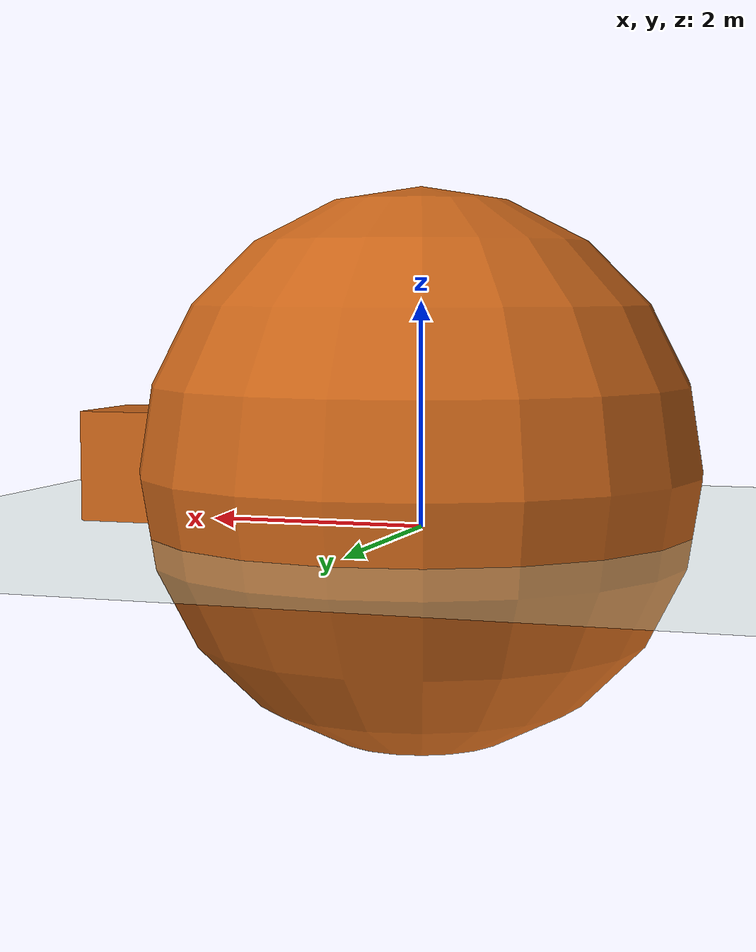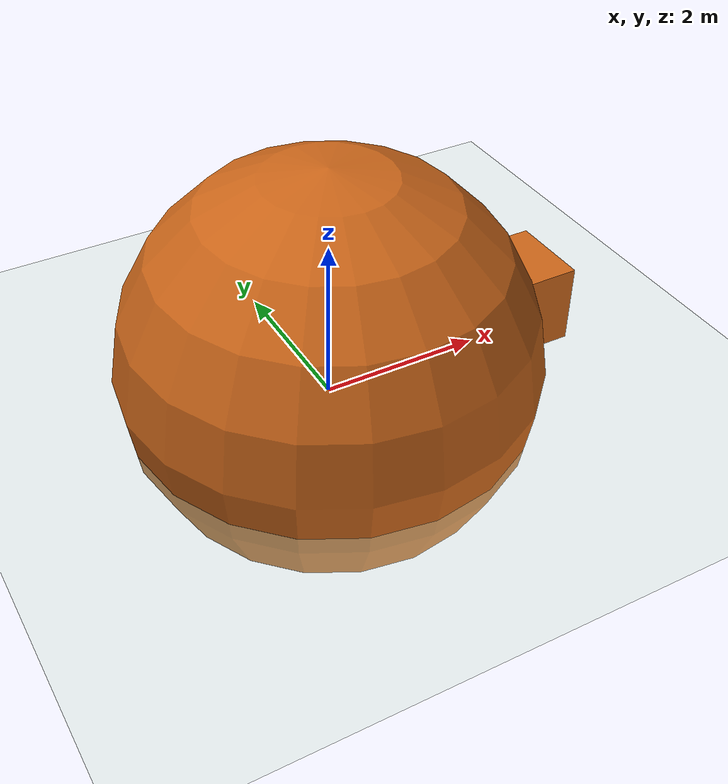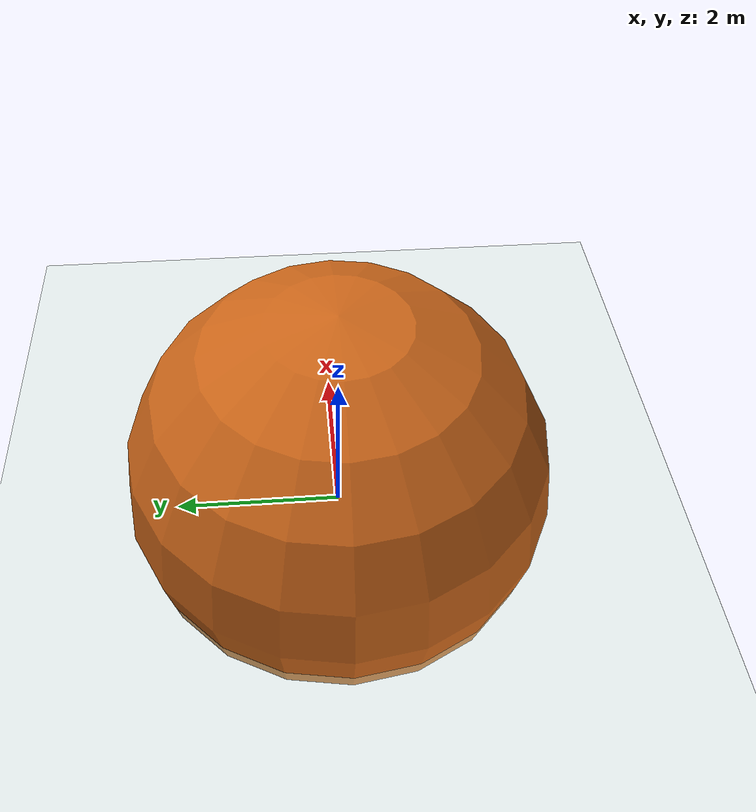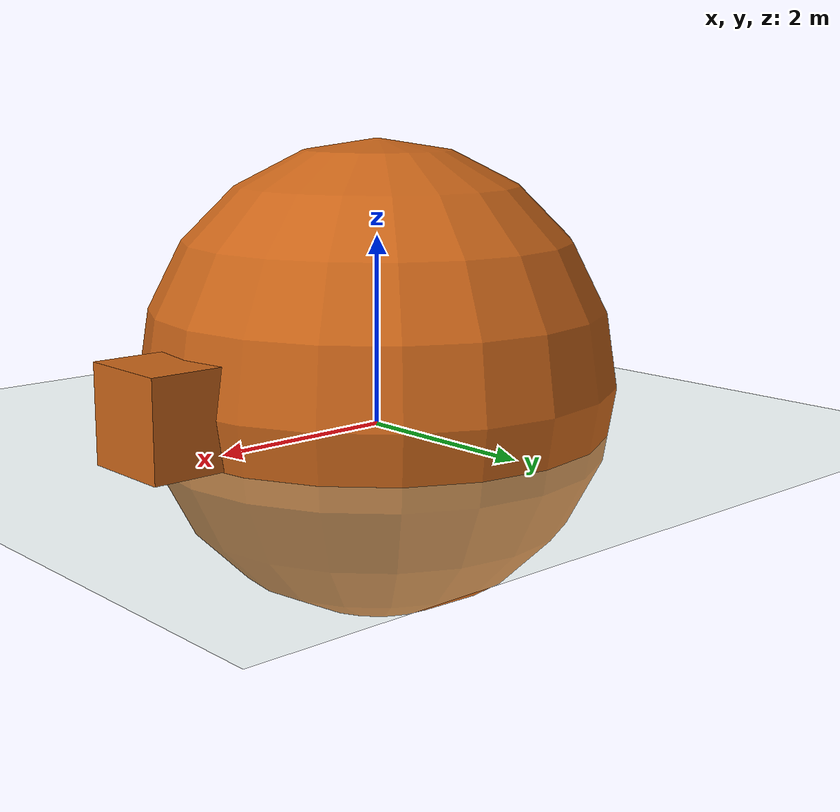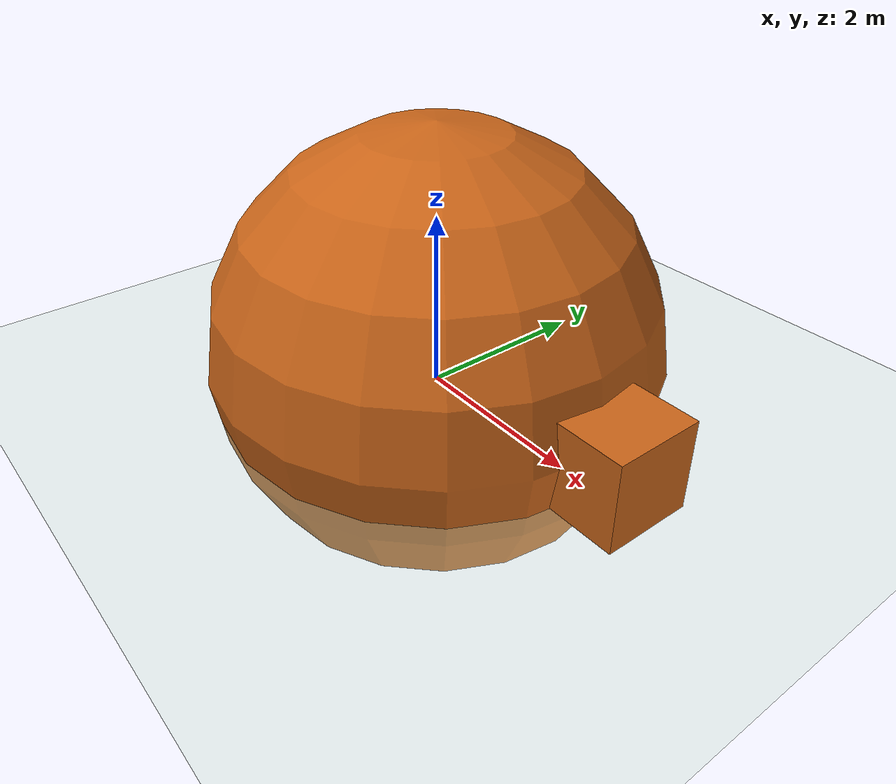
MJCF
<mujoco>
    <compiler inertiafromgeom="true" angle="degree" coordinate="local" />
    <option timestep="0.02" integrator="RK4" />
    <default>
        <joint limited="false" armature="0" damping="0" />
        <geom condim="3" conaffinity="0" margin="0" friction="10.0 5.0 5.0" rgba="0.8 0.6 0.4 1" density="100" />
    </default>
    <asset>
        <texture type="skybox" builtin="gradient" width="100" height="100" rgb1="1 1 1" rgb2="0 0 0" />
        <texture name="texgeom" type="cube" builtin="flat" mark="cross" width="127" height="1278" rgb1="0.8 0.6 0.4" rgb2="0.8 0.6 0.4" markrgb="1 1 1" random="0.01" />
        <texture name="texplane" type="2d" builtin="checker" rgb1="0.2 0.3 0.4" rgb2="0.1 0.2 0.3" width="100" height="100" />
        <material name="MatPlane" texture="texplane" shininess="1" texrepeat="30 30" specular="1"  reflectance="0.5" />
        <material name="geom" texture="texgeom" texuniform="true" />
    </asset>
    <worldbody>
        <light directional="true" cutoff="100" exponent="1" diffuse="1 1 1" specular=".1 .1 .1" pos="0 0 1.3" dir="-0 0 -1.3" />
        <geom name="floor" material="MatPlane" pos="0 0 0" size="40 40 40" type="plane" conaffinity="1" rgba="0.8 0.9 0.8 1" condim="3" />
        <!--  ================= Point ================= /-->
        <!--  Note that the solimp is modified from rllab to prevent the point from going through the wall /-->
        <body name="torso" pos="0 0 0">
<!--            orignal below -->
            <!-- 5x below -->
             <geom name="pointbody" type="sphere" size="2.5" pos="0 0 0.5" rgba="0.8 0.4 0.1 1" solimp="0.9 0.99 0.001" />
            <geom name="pointarrow" type="box" size="2.5 0.5 0.5" pos="0.6 0 0.5" rgba="0.8 0.4 0.1 1" solimp="0.9 0.99 0.001" />
<!--            10x below -->
            <joint name="ballx" type="slide" axis="1 0 0" pos="0 0 0" />
            <joint name="bally" type="slide" axis="0 1 0" pos="0 0 0" />
            <joint name="rot" type="hinge" axis="0 0 1" pos="0 0 0" limited="false" />
        </body>
    </worldbody>
    <actuator>
        <!-- Those are just dummy actuators for providing ranges -->
        <motor joint="ballx" ctrlrange="-1 1" ctrllimited="true" />
        <motor joint="rot" ctrlrange="-0.25 0.25" ctrllimited="true" />
    </actuator>
</mujoco>
